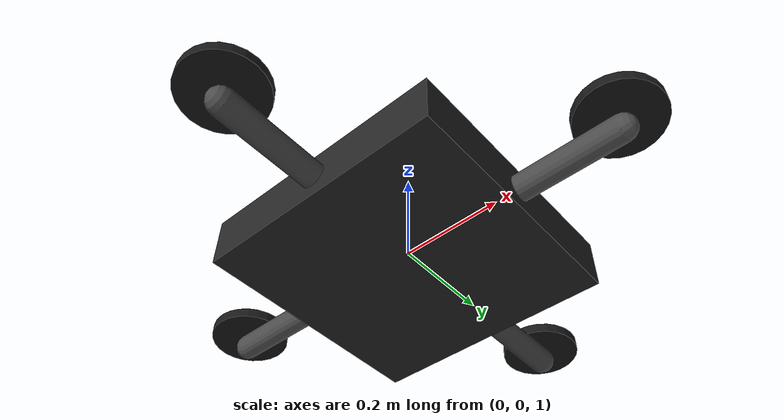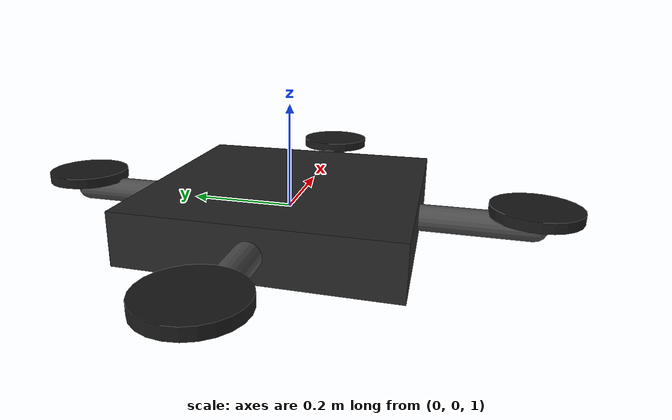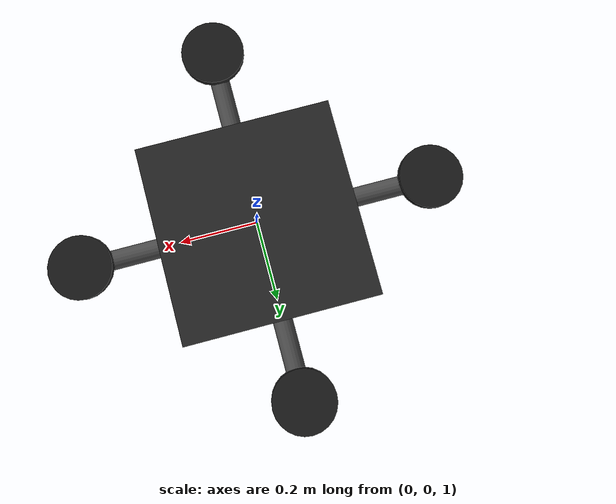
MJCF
<mujoco model="quaternion_quadrotor">

    <option
        timestep="0.0002"
        gravity="0 0 0"
    />

    <worldbody>

        <body name="quadrotor" pos="0 0 1">

            <freejoint/>

            <!-- EXACT inertia used in the paper -->
            <inertial
                pos="0 0 0"
                mass="1.0"
                diaginertia="0.00065 0.00065 0.0012"
            />

            <!-- Central body -->
            <geom
                name="body"
                type="box"
                size="0.25 0.25 0.05"
                density="0"
                rgba="0.15 0.15 0.15 1"
            />

            <!-- X arm -->
            <geom
                name="arm_x"
                type="capsule"
                fromto="-0.45 0 0 0.45 0 0"
                size="0.025"
                density="0"
                rgba="0.3 0.3 0.3 1"
            />

            <!-- Y arm -->
            <geom
                name="arm_y"
                type="capsule"
                fromto="0 -0.45 0 0 0.45 0"
                size="0.025"
                density="0"
                rgba="0.3 0.3 0.3 1"
            />

            <!-- Rotor 1 -->
            <geom
                name="rotor1"
                type="cylinder"
                pos="0.45 0 0.03"
                size="0.08 0.01"
                density="0"
                rgba="0.1 0.1 0.1 1"
            />

            <!-- Rotor 2 -->
            <geom
                name="rotor2"
                type="cylinder"
                pos="-0.45 0 0.03"
                size="0.08 0.01"
                density="0"
                rgba="0.1 0.1 0.1 1"
            />

            <!-- Rotor 3 -->
            <geom
                name="rotor3"
                type="cylinder"
                pos="0 0.45 0.03"
                size="0.08 0.01"
                density="0"
                rgba="0.1 0.1 0.1 1"
            />

            <!-- Rotor 4 -->
            <geom
                name="rotor4"
                type="cylinder"
                pos="0 -0.45 0.03"
                size="0.08 0.01"
                density="0"
                rgba="0.1 0.1 0.1 1"
            />

        </body>

    </worldbody>

</mujoco>
